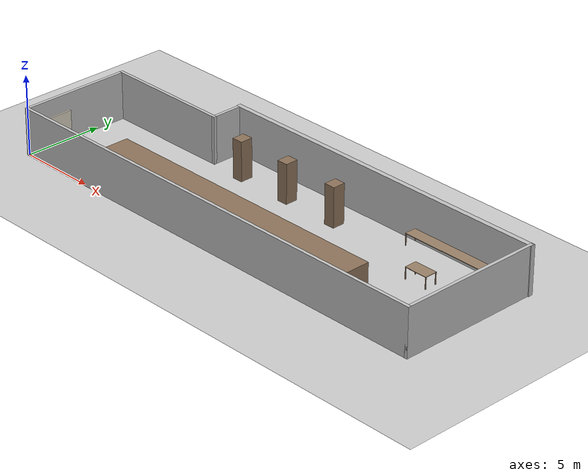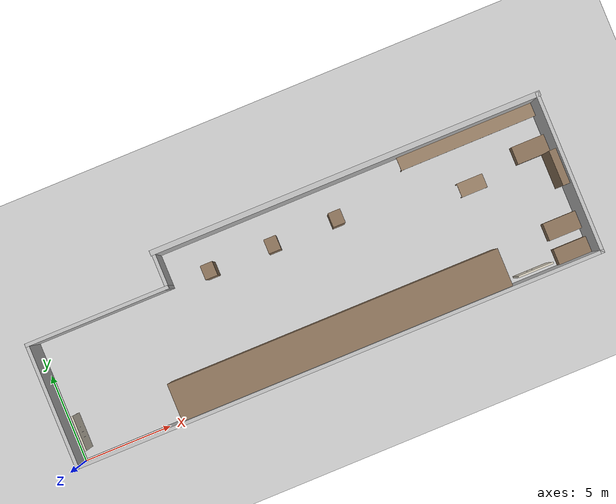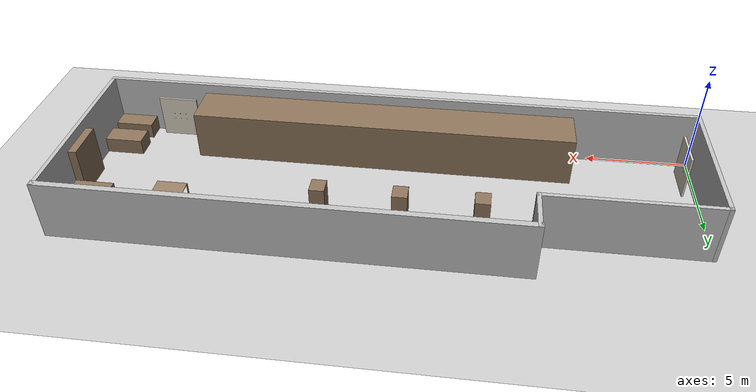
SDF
<?xml version="1.0" ?>
<sdf version="1.9">
  <world name="kmr_iiwa_world">
    <gravity>0 0 -9.81</gravity>
    <physics name="1ms" type="ignored">
      <max_step_size>0.001</max_step_size>
      <real_time_factor>1.0</real_time_factor>
    </physics>
    <plugin
      filename="ignition-gazebo-physics-system"
      name="ignition::gazebo::systems::Physics">
    </plugin>
    <plugin
        filename="ignition-gazebo-scene-broadcaster-system"
        name="ignition::gazebo::systems::SceneBroadcaster">
    </plugin>
    <plugin
      filename="gz-sim-sensors-system"
      name="gz::sim::systems::Sensors">
      <render_engine>ogre2</render_engine>
    </plugin>

    <plugin filename="libignition-gazebo-imu-system.so"
            name="ignition::gazebo::systems::Imu">
    </plugin>
    <plugin
      filename="libignition-gazebo-magnetometer-system"
      name="ignition::gazebo::systems::Magnetometer">
    </plugin>
    <plugin
      filename="libignition-gazebo-forcetorque-system"
      name="ignition::gazebo::systems::ForceTorque">
    </plugin>
    <!-- Necessary for spawining robot even from the launch-->
    <plugin
      filename="libignition-gazebo-user-commands-system"
      name="ignition::gazebo::systems::UserCommands">
    </plugin>

    <light type="directional" name="sun">
      <cast_shadows>true</cast_shadows>
      <pose>0 0 10 0 0 0</pose>
      <diffuse>0.8 0.8 0.8 1</diffuse>
      <specular>0.2 0.2 0.2 1</specular>
      <attenuation>
        <range>1000</range>
        <constant>0.9</constant>
        <linear>0.01</linear>
        <quadratic>0.001</quadratic>
      </attenuation>
      <direction>-0.5 0.1 -0.9</direction>
    </light>

    <model name="ground_plane">
      <static>true</static>
      <link name="link">
        <collision name="collision">
          <geometry>
            <plane>
              <normal>0 0 1</normal>
              <size>100 100</size>
            </plane>
          </geometry>
        </collision>
        <visual name="visual">
          <geometry>
            <plane>
              <normal>0 0 1</normal>
              <size>100 100</size>
            </plane>
          </geometry>
          <material>
            <ambient>0.8 0.8 0.8 1</ambient>
            <diffuse>0.8 0.8 0.8 1</diffuse>
            <specular>0.8 0.8 0.8 1</specular>
          </material>
        </visual>
      </link>
    </model>

    <!-- ===== Generado por generar_mundo.py a partir de laboratorio.yaml ===== -->
    <!-- Origen: Esquina SO, junto a la puerta principal -->
    <model name="pared_larga">
      <static>true</static>
      <pose>15.000 0.000 1.500 0 0 0.0000</pose>
      <link name="link">
        <collision name="pared_col"><pose>0 0 0 0 0 0</pose><geometry><box><size>30.200 0.200 3.000</size></box></geometry></collision>
        <visual name="pared_vis"><pose>0 0 0 0 0 0</pose><geometry><box><size>30.200 0.200 3.000</size></box></geometry><material><ambient>0.75 0.75 0.75 1</ambient><diffuse>0.75 0.75 0.75 1</diffuse></material></visual>
      </link>
    </model>
    <model name="pared_zona_id">
      <static>true</static>
      <pose>30.000 4.500 1.500 0 0 1.5708</pose>
      <link name="link">
        <collision name="pared_col"><pose>0 0 0 0 0 0</pose><geometry><box><size>9.200 0.200 3.000</size></box></geometry></collision>
        <visual name="pared_vis"><pose>0 0 0 0 0 0</pose><geometry><box><size>9.200 0.200 3.000</size></box></geometry><material><ambient>0.75 0.75 0.75 1</ambient><diffuse>0.75 0.75 0.75 1</diffuse></material></visual>
      </link>
    </model>
    <model name="pared_hasta_comedor">
      <static>true</static>
      <pose>19.000 9.000 1.500 0 0 3.1416</pose>
      <link name="link">
        <collision name="pared_col"><pose>0 0 0 0 0 0</pose><geometry><box><size>22.300 0.300 3.000</size></box></geometry></collision>
        <visual name="pared_vis"><pose>0 0 0 0 0 0</pose><geometry><box><size>22.300 0.300 3.000</size></box></geometry><material><ambient>0.75 0.75 0.75 1</ambient><diffuse>0.75 0.75 0.75 1</diffuse></material></visual>
      </link>
    </model>
    <model name="pared_comedor">
      <static>true</static>
      <pose>8.000 8.000 1.500 0 0 -1.5708</pose>
      <link name="link">
        <collision name="pared_col"><pose>0 0 0 0 0 0</pose><geometry><box><size>2.200 0.200 3.000</size></box></geometry></collision>
        <visual name="pared_vis"><pose>0 0 0 0 0 0</pose><geometry><box><size>2.200 0.200 3.000</size></box></geometry><material><ambient>0.75 0.75 0.75 1</ambient><diffuse>0.75 0.75 0.75 1</diffuse></material></visual>
      </link>
    </model>
    <model name="pared_hasta_puerta">
      <static>true</static>
      <pose>4.000 7.000 1.500 0 0 3.1416</pose>
      <link name="link">
        <collision name="pared_col"><pose>0 0 0 0 0 0</pose><geometry><box><size>8.200 0.200 3.000</size></box></geometry></collision>
        <visual name="pared_vis"><pose>0 0 0 0 0 0</pose><geometry><box><size>8.200 0.200 3.000</size></box></geometry><material><ambient>0.75 0.75 0.75 1</ambient><diffuse>0.75 0.75 0.75 1</diffuse></material></visual>
      </link>
    </model>
    <model name="pared_puerta">
      <static>true</static>
      <pose>0.000 3.500 1.500 0 0 -1.5708</pose>
      <link name="link">
        <collision name="pared_col"><pose>0 0 0 0 0 0</pose><geometry><box><size>7.200 0.200 3.000</size></box></geometry></collision>
        <visual name="pared_vis"><pose>0 0 0 0 0 0</pose><geometry><box><size>7.200 0.200 3.000</size></box></geometry><material><ambient>0.75 0.75 0.75 1</ambient><diffuse>0.75 0.75 0.75 1</diffuse></material></visual>
      </link>
    </model>
    <model name="armario_plc_1">
      <static>true</static>
      <pose>10.350 7.000 1.250 0 0 0.0000</pose>
      <link name="link">
        <collision name="caja_col"><pose>0 0 0 0 0 0</pose><geometry><box><size>0.700 0.800 2.500</size></box></geometry></collision>
        <visual name="caja_vis"><pose>0 0 0 0 0 0</pose><geometry><box><size>0.700 0.800 2.500</size></box></geometry><material><ambient>0.55 0.45 0.35 1</ambient><diffuse>0.55 0.45 0.35 1</diffuse></material></visual>
      </link>
    </model>
    <model name="armario_plc_2">
      <static>true</static>
      <pose>14.000 7.000 1.250 0 0 0.0000</pose>
      <link name="link">
        <collision name="caja_col"><pose>0 0 0 0 0 0</pose><geometry><box><size>0.700 0.800 2.500</size></box></geometry></collision>
        <visual name="caja_vis"><pose>0 0 0 0 0 0</pose><geometry><box><size>0.700 0.800 2.500</size></box></geometry><material><ambient>0.55 0.45 0.35 1</ambient><diffuse>0.55 0.45 0.35 1</diffuse></material></visual>
      </link>
    </model>
    <model name="armario_plc_3">
      <static>true</static>
      <pose>17.700 7.000 1.250 0 0 0.0000</pose>
      <link name="link">
        <collision name="caja_col"><pose>0 0 0 0 0 0</pose><geometry><box><size>0.700 0.800 2.500</size></box></geometry></collision>
        <visual name="caja_vis"><pose>0 0 0 0 0 0</pose><geometry><box><size>0.700 0.800 2.500</size></box></geometry><material><ambient>0.55 0.45 0.35 1</ambient><diffuse>0.55 0.45 0.35 1</diffuse></material></visual>
      </link>
    </model>
    <model name="cosas_tiradas">
      <static>true</static>
      <pose>15.500 1.100 1.250 0 0 0.0000</pose>
      <link name="link">
        <collision name="caja_col"><pose>0 0 0 0 0 0</pose><geometry><box><size>19.000 2.300 2.500</size></box></geometry></collision>
        <visual name="caja_vis"><pose>0 0 0 0 0 0</pose><geometry><box><size>19.000 2.300 2.500</size></box></geometry><material><ambient>0.55 0.45 0.35 1</ambient><diffuse>0.55 0.45 0.35 1</diffuse></material></visual>
      </link>
    </model>
    <model name="armario_electrico">
      <static>true</static>
      <pose>29.750 5.000 1.250 0 0 0.0000</pose>
      <link name="link">
        <collision name="caja_col"><pose>0 0 0 0 0 0</pose><geometry><box><size>0.500 2.000 2.500</size></box></geometry></collision>
        <visual name="caja_vis"><pose>0 0 0 0 0 0</pose><geometry><box><size>0.500 2.000 2.500</size></box></geometry><material><ambient>0.55 0.45 0.35 1</ambient><diffuse>0.55 0.45 0.35 1</diffuse></material></visual>
      </link>
    </model>
    <model name="palet">
      <static>true</static>
      <pose>29.000 6.500 0.400 0 0 0.0000</pose>
      <link name="link">
        <collision name="caja_col"><pose>0 0 0 0 0 0</pose><geometry><box><size>2.000 1.000 0.800</size></box></geometry></collision>
        <visual name="caja_vis"><pose>0 0 0 0 0 0</pose><geometry><box><size>2.000 1.000 0.800</size></box></geometry><material><ambient>0.55 0.45 0.35 1</ambient><diffuse>0.55 0.45 0.35 1</diffuse></material></visual>
      </link>
    </model>
    <model name="palet2">
      <static>true</static>
      <pose>29.000 0.500 0.400 0 0 0.0000</pose>
      <link name="link">
        <collision name="caja_col"><pose>0 0 0 0 0 0</pose><geometry><box><size>2.000 1.000 0.800</size></box></geometry></collision>
        <visual name="caja_vis"><pose>0 0 0 0 0 0</pose><geometry><box><size>2.000 1.000 0.800</size></box></geometry><material><ambient>0.55 0.45 0.35 1</ambient><diffuse>0.55 0.45 0.35 1</diffuse></material></visual>
      </link>
    </model>
    <model name="armario_electrico2">
      <static>true</static>
      <pose>29.000 2.000 0.400 0 0 0.0000</pose>
      <link name="link">
        <collision name="caja_col"><pose>0 0 0 0 0 0</pose><geometry><box><size>2.000 1.000 0.800</size></box></geometry></collision>
        <visual name="caja_vis"><pose>0 0 0 0 0 0</pose><geometry><box><size>2.000 1.000 0.800</size></box></geometry><material><ambient>0.55 0.45 0.35 1</ambient><diffuse>0.55 0.45 0.35 1</diffuse></material></visual>
      </link>
    </model>
    <model name="mesa_benat">
      <static>true</static>
      <pose>25.250 5.900 0.000 0 0 0.0000</pose>
      <link name="link">
        <collision name="tablero_col"><pose>0 0 0.735 0 0 0</pose><geometry><box><size>1.500 0.800 0.030</size></box></geometry></collision>
        <visual name="tablero_vis"><pose>0 0 0.735 0 0 0</pose><geometry><box><size>1.500 0.800 0.030</size></box></geometry><material><ambient>0.60 0.50 0.40 1</ambient><diffuse>0.60 0.50 0.40 1</diffuse></material></visual>
        <collision name="pata0_col"><pose>0.725 0.375 0.360 0 0 0</pose><geometry><box><size>0.050 0.050 0.720</size></box></geometry></collision>
        <visual name="pata0_vis"><pose>0.725 0.375 0.360 0 0 0</pose><geometry><box><size>0.050 0.050 0.720</size></box></geometry><material><ambient>0.60 0.50 0.40 1</ambient><diffuse>0.60 0.50 0.40 1</diffuse></material></visual>
        <collision name="pata1_col"><pose>0.725 -0.375 0.360 0 0 0</pose><geometry><box><size>0.050 0.050 0.720</size></box></geometry></collision>
        <visual name="pata1_vis"><pose>0.725 -0.375 0.360 0 0 0</pose><geometry><box><size>0.050 0.050 0.720</size></box></geometry><material><ambient>0.60 0.50 0.40 1</ambient><diffuse>0.60 0.50 0.40 1</diffuse></material></visual>
        <collision name="pata2_col"><pose>-0.725 0.375 0.360 0 0 0</pose><geometry><box><size>0.050 0.050 0.720</size></box></geometry></collision>
        <visual name="pata2_vis"><pose>-0.725 0.375 0.360 0 0 0</pose><geometry><box><size>0.050 0.050 0.720</size></box></geometry><material><ambient>0.60 0.50 0.40 1</ambient><diffuse>0.60 0.50 0.40 1</diffuse></material></visual>
        <collision name="pata3_col"><pose>-0.725 -0.375 0.360 0 0 0</pose><geometry><box><size>0.050 0.050 0.720</size></box></geometry></collision>
        <visual name="pata3_vis"><pose>-0.725 -0.375 0.360 0 0 0</pose><geometry><box><size>0.050 0.050 0.720</size></box></geometry><material><ambient>0.60 0.50 0.40 1</ambient><diffuse>0.60 0.50 0.40 1</diffuse></material></visual>
      </link>
    </model>
    <model name="mesa_robots">
      <static>true</static>
      <pose>26.000 8.500 0.000 0 0 0.0000</pose>
      <link name="link">
        <collision name="tablero_col"><pose>0 0 0.735 0 0 0</pose><geometry><box><size>8.000 0.800 0.030</size></box></geometry></collision>
        <visual name="tablero_vis"><pose>0 0 0.735 0 0 0</pose><geometry><box><size>8.000 0.800 0.030</size></box></geometry><material><ambient>0.60 0.50 0.40 1</ambient><diffuse>0.60 0.50 0.40 1</diffuse></material></visual>
        <collision name="pata0_col"><pose>3.975 0.375 0.360 0 0 0</pose><geometry><box><size>0.050 0.050 0.720</size></box></geometry></collision>
        <visual name="pata0_vis"><pose>3.975 0.375 0.360 0 0 0</pose><geometry><box><size>0.050 0.050 0.720</size></box></geometry><material><ambient>0.60 0.50 0.40 1</ambient><diffuse>0.60 0.50 0.40 1</diffuse></material></visual>
        <collision name="pata1_col"><pose>3.975 -0.375 0.360 0 0 0</pose><geometry><box><size>0.050 0.050 0.720</size></box></geometry></collision>
        <visual name="pata1_vis"><pose>3.975 -0.375 0.360 0 0 0</pose><geometry><box><size>0.050 0.050 0.720</size></box></geometry><material><ambient>0.60 0.50 0.40 1</ambient><diffuse>0.60 0.50 0.40 1</diffuse></material></visual>
        <collision name="pata2_col"><pose>-3.975 0.375 0.360 0 0 0</pose><geometry><box><size>0.050 0.050 0.720</size></box></geometry></collision>
        <visual name="pata2_vis"><pose>-3.975 0.375 0.360 0 0 0</pose><geometry><box><size>0.050 0.050 0.720</size></box></geometry><material><ambient>0.60 0.50 0.40 1</ambient><diffuse>0.60 0.50 0.40 1</diffuse></material></visual>
        <collision name="pata3_col"><pose>-3.975 -0.375 0.360 0 0 0</pose><geometry><box><size>0.050 0.050 0.720</size></box></geometry></collision>
        <visual name="pata3_vis"><pose>-3.975 -0.375 0.360 0 0 0</pose><geometry><box><size>0.050 0.050 0.720</size></box></geometry><material><ambient>0.60 0.50 0.40 1</ambient><diffuse>0.60 0.50 0.40 1</diffuse></material></visual>
      </link>
    </model>
    <model name="panel_atornillado_este">
      <static>true</static>
      <pose>26.500 0.400 0.000 0 0 0.0000</pose>
      <link name="link">
        <collision name="panel_col"><pose>0 0 1.100 0 0 0</pose><geometry><box><size>2.000 0.100 2.200</size></box></geometry></collision>
        <visual name="panel_vis"><pose>0 0 1.100 0 0 0</pose><geometry><box><size>2.000 0.100 2.200</size></box></geometry><material><ambient>0.86 0.83 0.76 1</ambient><diffuse>0.86 0.83 0.76 1</diffuse></material></visual>
        <visual name="hueco_f0_c0_vis"><pose>-0.300 0.052 1.000 -1.5708 0 0</pose><geometry><cylinder><radius>0.020</radius><length>0.004</length></cylinder></geometry><material><ambient>0.08 0.08 0.08 1</ambient><diffuse>0.08 0.08 0.08 1</diffuse></material></visual>
        <visual name="hueco_f0_c1_vis"><pose>0.000 0.052 1.000 -1.5708 0 0</pose><geometry><cylinder><radius>0.020</radius><length>0.004</length></cylinder></geometry><material><ambient>0.08 0.08 0.08 1</ambient><diffuse>0.08 0.08 0.08 1</diffuse></material></visual>
        <visual name="hueco_f0_c2_vis"><pose>0.300 0.052 1.000 -1.5708 0 0</pose><geometry><cylinder><radius>0.020</radius><length>0.004</length></cylinder></geometry><material><ambient>0.08 0.08 0.08 1</ambient><diffuse>0.08 0.08 0.08 1</diffuse></material></visual>
        <visual name="hueco_f1_c0_vis"><pose>-0.300 0.052 1.300 -1.5708 0 0</pose><geometry><cylinder><radius>0.020</radius><length>0.004</length></cylinder></geometry><material><ambient>0.08 0.08 0.08 1</ambient><diffuse>0.08 0.08 0.08 1</diffuse></material></visual>
        <visual name="hueco_f1_c1_vis"><pose>0.000 0.052 1.300 -1.5708 0 0</pose><geometry><cylinder><radius>0.020</radius><length>0.004</length></cylinder></geometry><material><ambient>0.08 0.08 0.08 1</ambient><diffuse>0.08 0.08 0.08 1</diffuse></material></visual>
        <visual name="hueco_f1_c2_vis"><pose>0.300 0.052 1.300 -1.5708 0 0</pose><geometry><cylinder><radius>0.020</radius><length>0.004</length></cylinder></geometry><material><ambient>0.08 0.08 0.08 1</ambient><diffuse>0.08 0.08 0.08 1</diffuse></material></visual>
      </link>
    </model>
    <model name="panel_atornillado_oeste">
      <static>true</static>
      <pose>0.600 1.600 0.000 0 0 -1.5708</pose>
      <link name="link">
        <collision name="panel_col"><pose>0 0 1.100 0 0 0</pose><geometry><box><size>2.000 0.100 2.200</size></box></geometry></collision>
        <visual name="panel_vis"><pose>0 0 1.100 0 0 0</pose><geometry><box><size>2.000 0.100 2.200</size></box></geometry><material><ambient>0.86 0.83 0.76 1</ambient><diffuse>0.86 0.83 0.76 1</diffuse></material></visual>
        <visual name="hueco_f0_c0_vis"><pose>-0.300 0.052 1.000 -1.5708 0 0</pose><geometry><cylinder><radius>0.020</radius><length>0.004</length></cylinder></geometry><material><ambient>0.08 0.08 0.08 1</ambient><diffuse>0.08 0.08 0.08 1</diffuse></material></visual>
        <visual name="hueco_f0_c1_vis"><pose>0.000 0.052 1.000 -1.5708 0 0</pose><geometry><cylinder><radius>0.020</radius><length>0.004</length></cylinder></geometry><material><ambient>0.08 0.08 0.08 1</ambient><diffuse>0.08 0.08 0.08 1</diffuse></material></visual>
        <visual name="hueco_f0_c2_vis"><pose>0.300 0.052 1.000 -1.5708 0 0</pose><geometry><cylinder><radius>0.020</radius><length>0.004</length></cylinder></geometry><material><ambient>0.08 0.08 0.08 1</ambient><diffuse>0.08 0.08 0.08 1</diffuse></material></visual>
        <visual name="hueco_f1_c0_vis"><pose>-0.300 0.052 1.300 -1.5708 0 0</pose><geometry><cylinder><radius>0.020</radius><length>0.004</length></cylinder></geometry><material><ambient>0.08 0.08 0.08 1</ambient><diffuse>0.08 0.08 0.08 1</diffuse></material></visual>
        <visual name="hueco_f1_c1_vis"><pose>0.000 0.052 1.300 -1.5708 0 0</pose><geometry><cylinder><radius>0.020</radius><length>0.004</length></cylinder></geometry><material><ambient>0.08 0.08 0.08 1</ambient><diffuse>0.08 0.08 0.08 1</diffuse></material></visual>
        <visual name="hueco_f1_c2_vis"><pose>0.300 0.052 1.300 -1.5708 0 0</pose><geometry><cylinder><radius>0.020</radius><length>0.004</length></cylinder></geometry><material><ambient>0.08 0.08 0.08 1</ambient><diffuse>0.08 0.08 0.08 1</diffuse></material></visual>
      </link>
    </model>
  </world>
</sdf>
